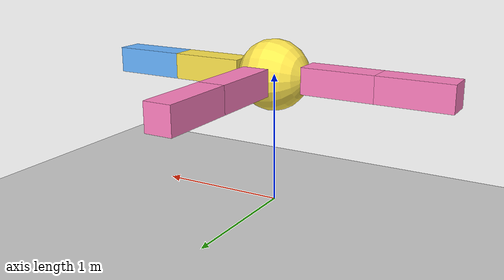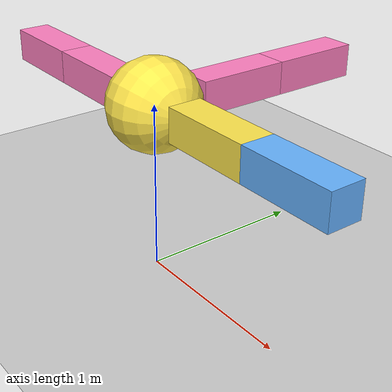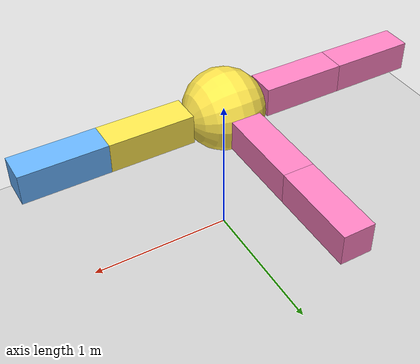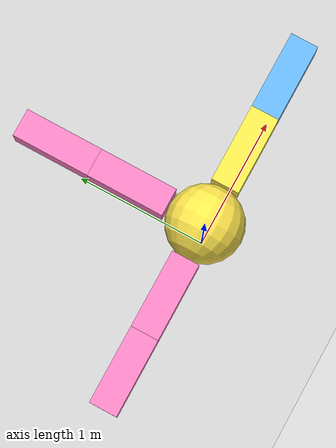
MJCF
<mujoco>
            <option gravity="0 0 -15" />
            <worldbody>
                <light diffuse=".5 .5 .6" pos="0 2 3" dir="0 -0.5 -1" />
                <geom type="plane" size="3 3 0.1" rgba="0.8 0.8 0.8 1" />
                <body name="body" pos="0 0 1" euler="0 90 0">
	<joint type="free" />
	<geom type="sphere" size="0.27 0.27 0.27" rgba="1.35 0.9 0.3 1.0" />
	<body name="leg0" pos="0 0 -0.55" euler="0 0 0">
		<joint name="leg0_joint" type="hinge" pos="0 0 0.28" axis="0 90 0" range="-45 45" />
		<geom type="box" size="0.1 0.1 0.28" rgba="1.4 0.5 0.75 1.0" />
	<body name="leg0_seg1" pos="0 0 -0.56" euler="0 0 0">
		<joint name="leg0_seg1_joint" type="hinge" pos="0 0 0.28" axis="0 90 0" range="-45 45" />
		<geom type="box" size="0.1 0.1 0.28" rgba="1.4 0.5 0.75 1.0" />
	</body>
	</body>
	<body name="leg1" pos="0 0.55 0" euler="90 0 0">
		<joint name="leg1_joint" type="hinge" pos="0 0 0.28" axis="0 90 0" range="-53 53" />
		<geom type="box" size="0.1 0.1 0.28" rgba="1.4 0.5 0.75 1.0" />
	<body name="leg1_seg1" pos="0 0 -0.56" euler="0 0 0">
		<joint name="leg1_seg1_joint" type="hinge" pos="0 0 0.28" axis="0 90 0" range="-53 53" />
		<geom type="box" size="0.1 0.1 0.28" rgba="1.4 0.5 0.75 1.0" />
	</body>
	</body>
	<body name="leg2" pos="0 0 0.55" euler="180 0 0">
		<joint name="leg2_joint" type="hinge" pos="0 0 0.28" axis="0 90 0" range="-47 47" />
		<geom type="box" size="0.1 0.1 0.28" rgba="1.35 0.9 0.3 1.0" />
	<body name="leg2_seg1" pos="0 0 -0.56" euler="0 0 0">
		<joint name="leg2_seg1_joint" type="hinge" pos="0 0 0.28" axis="0 90 0" range="-47 47" />
		<geom type="box" size="0.1 0.1 0.28" rgba="0.4 0.7 1.5 1.0" />
	</body>
	</body>
</body>
            </worldbody>
                <actuator>
                    <motor gear="42" joint="leg0_joint" />
<motor gear="49" joint="leg1_joint" />
<motor gear="32" joint="leg2_joint" />

                </actuator>
        </mujoco>
